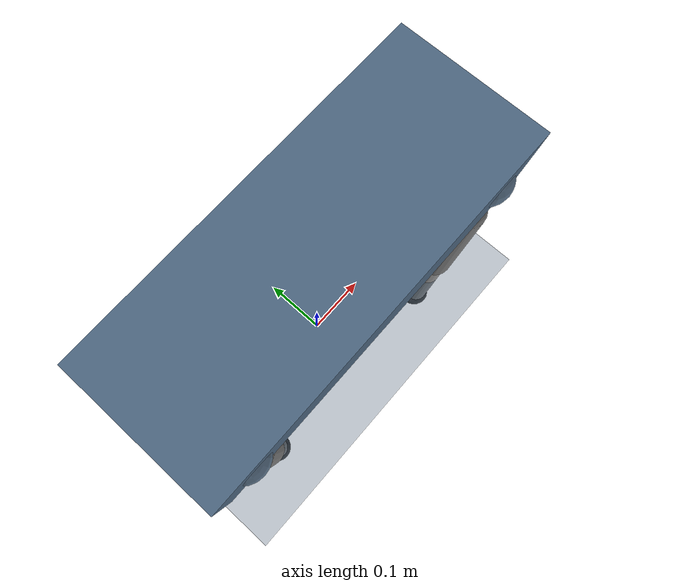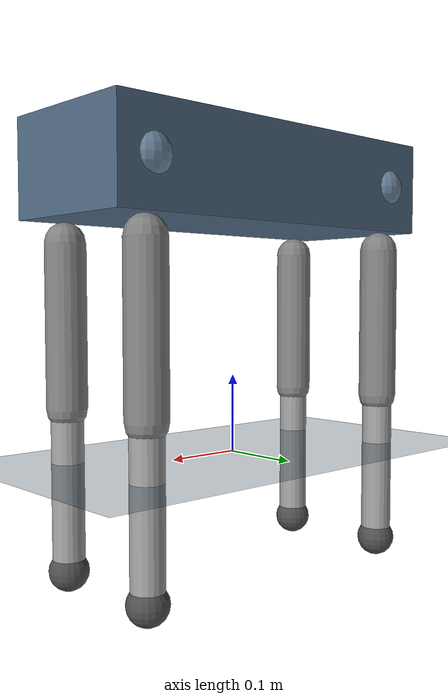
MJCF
<?xml version="1.0" encoding="utf-8"?>
<mujoco model="go2_quadruped">
  <compiler angle="radian" meshdir="meshes" autolimits="true"/>

  <asset>
    <!-- 地面纹理 -->
    <texture name="tex_plane" type="2d" builtin="checker" rgb1="0.2 0.3 0.4" rgb2="0.1 0.2 0.3"
             width="300" height="300" mark="edge" markrgb="0.8 0.8 0.8"/>
    <material name="mat_plane" texture="tex_plane" texrepeat="5 5" texuniform="true" reflectance="0.2"/>

    <!-- 机器人材质 -->
    <material name="mat_base" rgba="0.3 0.4 0.5 1.0"/>
    <material name="mat_hip" rgba="0.4 0.5 0.6 1.0"/>
    <material name="mat_thigh" rgba="0.5 0.5 0.5 1.0"/>
    <material name="mat_calf" rgba="0.6 0.6 0.6 1.0"/>
    <material name="mat_foot" rgba="0.3 0.3 0.3 1.0"/>
  </asset>

  <default>
    <geom type="box" condim="3"/>
    <joint type="hinge" limited="true" armature="0.01" damping="0.1" frictionloss="0.01"/>
    <motor ctrlrange="-1 1"/>
    <default class="leg">
      <geom type="capsule" size="0.02" rgba="0.5 0.5 0.5 1"/>
      <joint type="hinge" limited="true"/>
    </default>
  </default>

  <worldbody>
    <!-- 地面 -->
    <light name="light" pos="0 0 10" dir="0 0 -1" diffuse="0.8 0.8 0.8" specular="0.2 0.2 0.2"/>
    <geom name="floor" type="plane" pos="0 0 0" size="10 10 0.1" material="mat_plane" condim="3"/>

    <!-- Go2 机器人基座 -->
    <body name="base" pos="0 0 0.35">
      <inertial pos="0 0 0" mass="4.0"
                diaginertia="0.08 0.2 0.2"/>
      <freejoint name="base_joint"/>

      <!-- 基座视觉 -->
      <geom name="base_geom" type="box" pos="0 0 0" size="0.25 0.1 0.06" material="mat_base"/>

      <!-- IMU 传感器位置 -->
      <site name="imu_site" pos="0 0 0" size="0.01"/>

      <!-- ===== 前左腿 (Front Left) ===== -->
      <body name="FL_hip" pos="0.2 0.08 0">
        <inertial pos="0 0 0" mass="0.1" diaginertia="0.001 0.001 0.001"/>
        <joint name="FL_hip_x" axis="1 0 0" range="-0.5 0.5"/>
        <geom name="FL_hip_geom" type="sphere" size="0.03" material="mat_hip"/>

        <body name="FL_thigh" pos="0 0 -0.085">
          <inertial pos="0 0 -0.1" mass="0.5" diaginertia="0.002 0.002 0.002"/>
          <joint name="FL_hip_y" axis="0 1 0" range="-1.0 1.0"/>
          <geom name="FL_thigh_geom" type="capsule" fromto="0 0 0 0 0 -0.2" size="0.025" material="mat_thigh"/>

          <body name="FL_calf" pos="0 0 -0.2">
            <inertial pos="0 0 -0.1" mass="0.3" diaginertia="0.001 0.001 0.001"/>
            <joint name="FL_knee" axis="0 1 0" range="-2.5 -0.5"/>
            <geom name="FL_calf_geom" type="capsule" fromto="0 0 0 0 0 -0.2" size="0.02" material="mat_calf"/>

            <body name="FL_foot" pos="0 0 -0.2">
              <inertial pos="0 0 0" mass="0.05" diaginertia="0.0001 0.0001 0.0001"/>
              <geom name="FL_foot_geom" type="sphere" size="0.025" material="mat_foot" priority="1"/>
              <!-- 足端接触传感器 -->
              <site name="FL_foot_site" pos="0 0 0" size="0.005"/>
            </body>
          </body>
        </body>
      </body>

      <!-- ===== 前右腿 (Front Right) ===== -->
      <body name="FR_hip" pos="0.2 -0.08 0">
        <inertial pos="0 0 0" mass="0.1" diaginertia="0.001 0.001 0.001"/>
        <joint name="FR_hip_x" axis="1 0 0" range="-0.5 0.5"/>
        <geom name="FR_hip_geom" type="sphere" size="0.03" material="mat_hip"/>

        <body name="FR_thigh" pos="0 0 -0.085">
          <inertial pos="0 0 -0.1" mass="0.5" diaginertia="0.002 0.002 0.002"/>
          <joint name="FR_hip_y" axis="0 1 0" range="-1.0 1.0"/>
          <geom name="FR_thigh_geom" type="capsule" fromto="0 0 0 0 0 -0.2" size="0.025" material="mat_thigh"/>

          <body name="FR_calf" pos="0 0 -0.2">
            <inertial pos="0 0 -0.1" mass="0.3" diaginertia="0.001 0.001 0.001"/>
            <joint name="FR_knee" axis="0 1 0" range="-2.5 -0.5"/>
            <geom name="FR_calf_geom" type="capsule" fromto="0 0 0 0 0 -0.2" size="0.02" material="mat_calf"/>

            <body name="FR_foot" pos="0 0 -0.2">
              <inertial pos="0 0 0" mass="0.05" diaginertia="0.0001 0.0001 0.0001"/>
              <geom name="FR_foot_geom" type="sphere" size="0.025" material="mat_foot" priority="1"/>
              <site name="FR_foot_site" pos="0 0 0" size="0.005"/>
            </body>
          </body>
        </body>
      </body>

      <!-- ===== 后左腿 (Rear Left) ===== -->
      <body name="RL_hip" pos="-0.2 0.08 0">
        <inertial pos="0 0 0" mass="0.1" diaginertia="0.001 0.001 0.001"/>
        <joint name="RL_hip_x" axis="1 0 0" range="-0.5 0.5"/>
        <geom name="RL_hip_geom" type="sphere" size="0.03" material="mat_hip"/>

        <body name="RL_thigh" pos="0 0 -0.085">
          <inertial pos="0 0 -0.1" mass="0.5" diaginertia="0.002 0.002 0.002"/>
          <joint name="RL_hip_y" axis="0 1 0" range="-1.0 1.0"/>
          <geom name="RL_thigh_geom" type="capsule" fromto="0 0 0 0 0 -0.2" size="0.025" material="mat_thigh"/>

          <body name="RL_calf" pos="0 0 -0.2">
            <inertial pos="0 0 -0.1" mass="0.3" diaginertia="0.001 0.001 0.001"/>
            <joint name="RL_knee" axis="0 1 0" range="-2.5 -0.5"/>
            <geom name="RL_calf_geom" type="capsule" fromto="0 0 0 0 0 -0.2" size="0.02" material="mat_calf"/>

            <body name="RL_foot" pos="0 0 -0.2">
              <inertial pos="0 0 0" mass="0.05" diaginertia="0.0001 0.0001 0.0001"/>
              <geom name="RL_foot_geom" type="sphere" size="0.025" material="mat_foot" priority="1"/>
              <site name="RL_foot_site" pos="0 0 0" size="0.005"/>
            </body>
          </body>
        </body>
      </body>

      <!-- ===== 后右腿 (Rear Right) ===== -->
      <body name="RR_hip" pos="-0.2 -0.08 0">
        <inertial pos="0 0 0" mass="0.1" diaginertia="0.001 0.001 0.001"/>
        <joint name="RR_hip_x" axis="1 0 0" range="-0.5 0.5"/>
        <geom name="RR_hip_geom" type="sphere" size="0.03" material="mat_hip"/>

        <body name="RR_thigh" pos="0 0 -0.085">
          <inertial pos="0 0 -0.1" mass="0.5" diaginertia="0.002 0.002 0.002"/>
          <joint name="RR_hip_y" axis="0 1 0" range="-1.0 1.0"/>
          <geom name="RR_thigh_geom" type="capsule" fromto="0 0 0 0 0 -0.2" size="0.025" material="mat_thigh"/>

          <body name="RR_calf" pos="0 0 -0.2">
            <inertial pos="0 0 -0.1" mass="0.3" diaginertia="0.001 0.001 0.001"/>
            <joint name="RR_knee" axis="0 1 0" range="-2.5 -0.5"/>
            <geom name="RR_calf_geom" type="capsule" fromto="0 0 0 0 0 -0.2" size="0.02" material="mat_calf"/>

            <body name="RR_foot" pos="0 0 -0.2">
              <inertial pos="0 0 0" mass="0.05" diaginertia="0.0001 0.0001 0.0001"/>
              <geom name="RR_foot_geom" type="sphere" size="0.025" material="mat_foot" priority="1"/>
              <site name="RR_foot_site" pos="0 0 0" size="0.005"/>
            </body>
          </body>
        </body>
      </body>
    </body>
  </worldbody>

  <!-- 执行器: 12个关节的位置执行器 -->
  <actuator>
    <position name="FL_hip_x_act"    joint="FL_hip_x"  kp="60" kd="2"  forcerange="-35 35"/>
    <position name="FL_hip_y_act"    joint="FL_hip_y"  kp="60" kd="2"  forcerange="-35 35"/>
    <position name="FL_knee_act"     joint="FL_knee"   kp="60" kd="2"  forcerange="-35 35"/>
    <position name="FR_hip_x_act"    joint="FR_hip_x"  kp="60" kd="2"  forcerange="-35 35"/>
    <position name="FR_hip_y_act"    joint="FR_hip_y"  kp="60" kd="2"  forcerange="-35 35"/>
    <position name="FR_knee_act"     joint="FR_knee"   kp="60" kd="2"  forcerange="-35 35"/>
    <position name="RL_hip_x_act"    joint="RL_hip_x"  kp="60" kd="2"  forcerange="-35 35"/>
    <position name="RL_hip_y_act"    joint="RL_hip_y"  kp="60" kd="2"  forcerange="-35 35"/>
    <position name="RL_knee_act"     joint="RL_knee"   kp="60" kd="2"  forcerange="-35 35"/>
    <position name="RR_hip_x_act"    joint="RR_hip_x"  kp="60" kd="2"  forcerange="-35 35"/>
    <position name="RR_hip_y_act"    joint="RR_hip_y"  kp="60" kd="2"  forcerange="-35 35"/>
    <position name="RR_knee_act"     joint="RR_knee"   kp="60" kd="2"  forcerange="-35 35"/>
  </actuator>

  <!-- 传感器 -->
  <sensor>
    <!-- IMU: 加速度计 + 陀螺仪 -->
    <framequat  name="imu_quat"    objtype="site" objname="imu_site"/>
    <framelinvel name="imu_linvel" objtype="site" objname="imu_site"/>
    <frameangvel name="imu_angvel" objtype="site" objname="imu_site"/>

    <!-- 关节位置传感器 -->
    <jointpos name="FL_hip_x_pos" joint="FL_hip_x"/>
    <jointpos name="FL_hip_y_pos" joint="FL_hip_y"/>
    <jointpos name="FL_knee_pos"  joint="FL_knee"/>
    <jointpos name="FR_hip_x_pos" joint="FR_hip_x"/>
    <jointpos name="FR_hip_y_pos" joint="FR_hip_y"/>
    <jointpos name="FR_knee_pos"  joint="FR_knee"/>
    <jointpos name="RL_hip_x_pos" joint="RL_hip_x"/>
    <jointpos name="RL_hip_y_pos" joint="RL_hip_y"/>
    <jointpos name="RL_knee_pos"  joint="RL_knee"/>
    <jointpos name="RR_hip_x_pos" joint="RR_hip_x"/>
    <jointpos name="RR_hip_y_pos" joint="RR_hip_y"/>
    <jointpos name="RR_knee_pos"  joint="RR_knee"/>

    <!-- 关节速度传感器 -->
    <jointvel name="FL_hip_x_vel" joint="FL_hip_x"/>
    <jointvel name="FL_hip_y_vel" joint="FL_hip_y"/>
    <jointvel name="FL_knee_vel"  joint="FL_knee"/>
    <jointvel name="FR_hip_x_vel" joint="FR_hip_x"/>
    <jointvel name="FR_hip_y_vel" joint="FR_hip_y"/>
    <jointvel name="FR_knee_vel"  joint="FR_knee"/>
    <jointvel name="RL_hip_x_vel" joint="RL_hip_x"/>
    <jointvel name="RL_hip_y_vel" joint="RL_hip_y"/>
    <jointvel name="RL_knee_vel"  joint="RL_knee"/>
    <jointvel name="RR_hip_x_vel" joint="RR_hip_x"/>
    <jointvel name="RR_hip_y_vel" joint="RR_hip_y"/>
    <jointvel name="RR_knee_vel"  joint="RR_knee"/>

    <!-- 足端接触力传感器 -->
    <touch name="FL_touch" site="FL_foot_site"/>
    <touch name="FR_touch" site="FR_foot_site"/>
    <touch name="RL_touch" site="RL_foot_site"/>
    <touch name="RR_touch" site="RR_foot_site"/>
  </sensor>
</mujoco>
